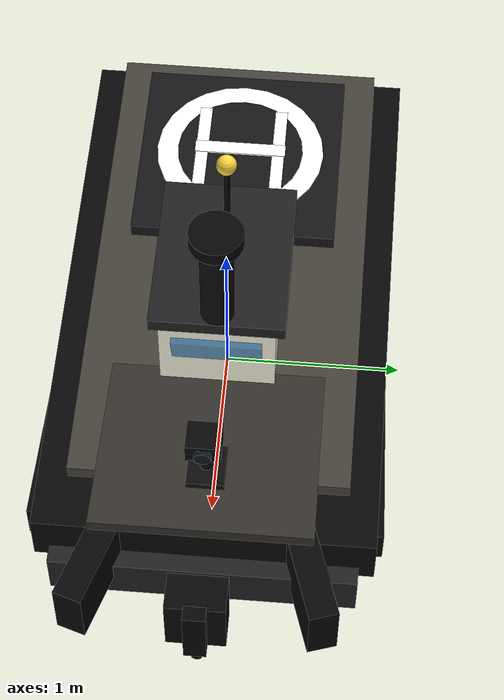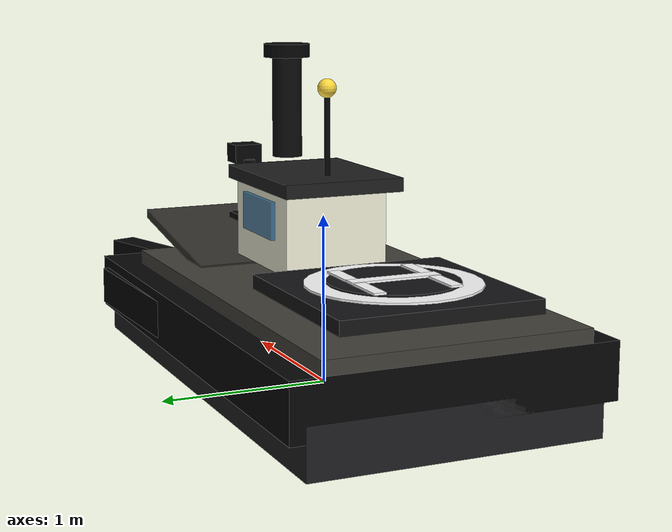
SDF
<?xml version="1.0" ?>
<sdf version="1.8">
  <model name="simple_boat">
    <pose>0 0 0.35 0 0 0</pose>

    <link name="hull">
      <inertial>
        <mass>70.0</mass>
        <inertia>
          <ixx>22.0</ixx>
          <iyy>48.0</iyy>
          <izz>58.0</izz>
          <ixy>0</ixy>
          <ixz>0</ixz>
          <iyz>0</iyz>
        </inertia>
      </inertial>

      <collision name="hull_collision">
        <pose>0 0 -0.05 0 0 0</pose>
        <geometry>
          <box>
            <size>3.4 1.9 0.5</size>
          </box>
        </geometry>
      </collision>

      <visual name="lower_hull">
        <pose>-0.05 0 -0.16 0 0 0</pose>
        <geometry>
          <box>
            <size>3.25 1.65 0.28</size>
          </box>
        </geometry>
        <material>
          <ambient>0.08 0.08 0.09 1</ambient>
          <diffuse>0.12 0.12 0.13 1</diffuse>
          <specular>0.1 0.1 0.1 1</specular>
        </material>
      </visual>

      <visual name="upper_hull">
        <pose>-0.1 0 0.05 0 0 0</pose>
        <geometry>
          <box>
            <size>3.15 1.82 0.32</size>
          </box>
        </geometry>
        <material>
          <ambient>0.015 0.015 0.018 1</ambient>
          <diffuse>0.025 0.025 0.03 1</diffuse>
          <specular>0.18 0.18 0.2 1</specular>
        </material>
      </visual>

      <visual name="bow_side_left">
        <pose>1.46 0.52 0.04 0 0 0.31</pose>
        <geometry>
          <box>
            <size>0.92 0.16 0.38</size>
          </box>
        </geometry>
        <material>
          <ambient>0.015 0.015 0.018 1</ambient>
          <diffuse>0.025 0.025 0.03 1</diffuse>
          <specular>0.18 0.18 0.2 1</specular>
        </material>
      </visual>

      <visual name="bow_side_right">
        <pose>1.46 -0.52 0.04 0 0 -0.31</pose>
        <geometry>
          <box>
            <size>0.92 0.16 0.38</size>
          </box>
        </geometry>
        <material>
          <ambient>0.015 0.015 0.018 1</ambient>
          <diffuse>0.025 0.025 0.03 1</diffuse>
          <specular>0.18 0.18 0.2 1</specular>
        </material>
      </visual>

      <visual name="bow_center_nose">
        <pose>1.82 0 0.04 0 0 0</pose>
        <geometry>
          <box>
            <size>0.2 0.32 0.4</size>
          </box>
        </geometry>
        <material>
          <ambient>0.012 0.012 0.015 1</ambient>
          <diffuse>0.022 0.022 0.026 1</diffuse>
          <specular>0.16 0.16 0.18 1</specular>
        </material>
      </visual>

      <visual name="bow_keel_line">
        <pose>1.55 0 -0.34 0 1.5708 0</pose>
        <geometry>
          <cylinder>
            <radius>0.028</radius>
            <length>0.72</length>
          </cylinder>
        </geometry>
        <material>
          <ambient>0.006 0.006 0.008 1</ambient>
          <diffuse>0.012 0.012 0.014 1</diffuse>
        </material>
      </visual>

      <visual name="foredeck_slope">
        <pose>1.05 0 0.36 0 -0.16 0</pose>
        <geometry>
          <box>
            <size>1.1 1.16 0.055</size>
          </box>
        </geometry>
        <material>
          <ambient>0.12 0.12 0.115 1</ambient>
          <diffuse>0.2 0.19 0.17 1</diffuse>
          <specular>0.08 0.08 0.08 1</specular>
        </material>
      </visual>

      <visual name="bow_stem">
        <pose>1.94 0 0.03 0 0 0</pose>
        <geometry>
          <box>
            <size>0.08 0.12 0.42</size>
          </box>
        </geometry>
        <material>
          <ambient>0.01 0.01 0.012 1</ambient>
          <diffuse>0.02 0.02 0.024 1</diffuse>
          <specular>0.16 0.16 0.18 1</specular>
        </material>
      </visual>

      <visual name="hull_side_fairing_left">
        <pose>0.05 0.86 0.04 0 0 0.035</pose>
        <geometry>
          <box>
            <size>2.65 0.08 0.22</size>
          </box>
        </geometry>
        <material>
          <ambient>0.01 0.01 0.012 1</ambient>
          <diffuse>0.018 0.018 0.022 1</diffuse>
          <specular>0.14 0.14 0.16 1</specular>
        </material>
      </visual>

      <visual name="hull_side_fairing_right">
        <pose>0.05 -0.86 0.04 0 0 -0.035</pose>
        <geometry>
          <box>
            <size>2.65 0.08 0.22</size>
          </box>
        </geometry>
        <material>
          <ambient>0.01 0.01 0.012 1</ambient>
          <diffuse>0.018 0.018 0.022 1</diffuse>
          <specular>0.14 0.14 0.16 1</specular>
        </material>
      </visual>

      <visual name="deck">
        <pose>-0.25 0 0.25 0 0 0</pose>
        <geometry>
          <box>
            <size>2.85 1.5 0.08</size>
          </box>
        </geometry>
        <material>
          <ambient>0.18 0.18 0.17 1</ambient>
          <diffuse>0.26 0.25 0.22 1</diffuse>
          <specular>0.08 0.08 0.08 1</specular>
        </material>
      </visual>

      <visual name="cabin_body">
        <pose>0.2 0 0.58 0 0 0</pose>
        <geometry>
          <box>
            <size>0.78 0.62 0.48</size>
          </box>
        </geometry>
        <material>
          <ambient>0.86 0.86 0.8 1</ambient>
          <diffuse>0.96 0.95 0.86 1</diffuse>
          <specular>0.28 0.28 0.24 1</specular>
        </material>
      </visual>

      <visual name="front_window">
        <pose>0.6 0 0.64 0 0.28 0</pose>
        <geometry>
          <box>
            <size>0.035 0.48 0.24</size>
          </box>
        </geometry>
        <material>
          <ambient>0.05 0.22 0.36 0.65</ambient>
          <diffuse>0.08 0.38 0.62 0.65</diffuse>
          <specular>0.9 0.95 1 1</specular>
        </material>
      </visual>

      <visual name="left_window">
        <pose>0.2 0.325 0.64 0 0 0</pose>
        <geometry>
          <box>
            <size>0.45 0.025 0.22</size>
          </box>
        </geometry>
        <material>
          <ambient>0.05 0.22 0.36 0.65</ambient>
          <diffuse>0.08 0.38 0.62 0.65</diffuse>
          <specular>0.9 0.95 1 1</specular>
        </material>
      </visual>

      <visual name="right_window">
        <pose>0.2 -0.325 0.64 0 0 0</pose>
        <geometry>
          <box>
            <size>0.45 0.025 0.22</size>
          </box>
        </geometry>
        <material>
          <ambient>0.05 0.22 0.36 0.65</ambient>
          <diffuse>0.08 0.38 0.62 0.65</diffuse>
          <specular>0.9 0.95 1 1</specular>
        </material>
      </visual>

      <visual name="cabin_roof">
        <pose>0.15 0 0.85 0 0 0</pose>
        <geometry>
          <box>
            <size>0.92 0.72 0.08</size>
          </box>
        </geometry>
        <material>
          <ambient>0.08 0.08 0.08 1</ambient>
          <diffuse>0.12 0.12 0.12 1</diffuse>
          <specular>0.18 0.18 0.18 1</specular>
        </material>
      </visual>

      <collision name="landing_pad_collision">
        <pose>-0.92 0 0.36 0 0 0</pose>
        <geometry>
          <box>
            <size>1.7 1.55 0.24</size>
          </box>
        </geometry>
        <surface>
          <contact>
            <ode>
              <min_depth>0.001</min_depth>
              <max_vel>0</max_vel>
            </ode>
          </contact>
          <friction>
            <ode>
              <mu>1.5</mu>
              <mu2>1.5</mu2>
            </ode>
          </friction>
        </surface>
      </collision>

      <visual name="landing_pad_visual">
        <pose>-0.92 0 0.38 0 0 0</pose>
        <geometry>
          <box>
            <size>1.15 1.15 0.08</size>
          </box>
        </geometry>
        <material>
          <ambient>0.04 0.04 0.045 1</ambient>
          <diffuse>0.08 0.08 0.09 1</diffuse>
          <specular>0.08 0.08 0.08 1</specular>
        </material>
      </visual>

      <visual name="landing_pad_ring">
        <pose>-0.92 0 0.435 0 0 0</pose>
        <geometry>
          <cylinder>
            <radius>0.48</radius>
            <length>0.012</length>
          </cylinder>
        </geometry>
        <material>
          <ambient>1 1 1 1</ambient>
          <diffuse>1 1 1 1</diffuse>
        </material>
      </visual>

      <visual name="landing_pad_center">
        <pose>-0.92 0 0.445 0 0 0</pose>
        <geometry>
          <cylinder>
            <radius>0.36</radius>
            <length>0.014</length>
          </cylinder>
        </geometry>
        <material>
          <ambient>0.04 0.04 0.045 1</ambient>
          <diffuse>0.08 0.08 0.09 1</diffuse>
        </material>
      </visual>

      <visual name="landing_h_left">
        <pose>-0.92 0.22 0.458 0 0 0</pose>
        <geometry>
          <box>
            <size>0.58 0.07 0.012</size>
          </box>
        </geometry>
        <material>
          <ambient>1 1 1 1</ambient>
          <diffuse>1 1 1 1</diffuse>
        </material>
      </visual>

      <visual name="landing_h_right">
        <pose>-0.92 -0.22 0.458 0 0 0</pose>
        <geometry>
          <box>
            <size>0.58 0.07 0.012</size>
          </box>
        </geometry>
        <material>
          <ambient>1 1 1 1</ambient>
          <diffuse>1 1 1 1</diffuse>
        </material>
      </visual>

      <visual name="landing_h_crossbar">
        <pose>-0.92 0 0.462 0 0 0</pose>
        <geometry>
          <box>
            <size>0.08 0.52 0.012</size>
          </box>
        </geometry>
        <material>
          <ambient>1 1 1 1</ambient>
          <diffuse>1 1 1 1</diffuse>
        </material>
      </visual>

      <visual name="mast">
        <pose>-0.05 0 1.1 0 0 0</pose>
        <geometry>
          <cylinder>
            <radius>0.018</radius>
            <length>0.55</length>
          </cylinder>
        </geometry>
        <material>
          <ambient>0.02 0.02 0.02 1</ambient>
          <diffuse>0.02 0.02 0.02 1</diffuse>
        </material>
      </visual>

      <visual name="nav_light">
        <pose>-0.05 0 1.39 0 0 0</pose>
        <geometry>
          <sphere>
            <radius>0.055</radius>
          </sphere>
        </geometry>
        <material>
          <ambient>1 0.85 0.25 1</ambient>
          <diffuse>1 0.85 0.25 1</diffuse>
          <specular>1 0.9 0.5 1</specular>
        </material>
      </visual>

      <visual name="lidar_mount">
        <pose>0.55 0 1.24 0 0 0</pose>
        <geometry>
          <cylinder>
            <radius>0.09</radius>
            <length>0.62</length>
          </cylinder>
        </geometry>
        <material>
          <ambient>0.02 0.02 0.022 1</ambient>
          <diffuse>0.04 0.04 0.045 1</diffuse>
          <specular>0.2 0.2 0.22 1</specular>
        </material>
      </visual>

      <visual name="lidar_body">
        <pose>0.55 0 1.57 0 0 0</pose>
        <geometry>
          <cylinder>
            <radius>0.14</radius>
            <length>0.08</length>
          </cylinder>
        </geometry>
        <material>
          <ambient>0.01 0.01 0.012 1</ambient>
          <diffuse>0.02 0.02 0.024 1</diffuse>
          <specular>0.35 0.35 0.38 1</specular>
        </material>
      </visual>

      <visual name="front_camera_mount_base">
        <pose>1.2 0 0.455 0 0 0</pose>
        <geometry>
          <box>
            <size>0.24 0.2 0.04</size>
          </box>
        </geometry>
        <material>
          <ambient>0.025 0.025 0.028 1</ambient>
          <diffuse>0.04 0.04 0.045 1</diffuse>
          <specular>0.18 0.18 0.2 1</specular>
        </material>
      </visual>

      <visual name="front_camera_mount_post">
        <pose>1.2 0 0.65 0 0 0</pose>
        <geometry>
          <cylinder>
            <radius>0.035</radius>
            <length>0.35</length>
          </cylinder>
        </geometry>
        <material>
          <ambient>0.018 0.018 0.02 1</ambient>
          <diffuse>0.03 0.03 0.034 1</diffuse>
          <specular>0.18 0.18 0.2 1</specular>
        </material>
      </visual>

      <visual name="front_camera_body">
        <pose>1.29 0 0.86 0 0 0</pose>
        <geometry>
          <box>
            <size>0.16 0.18 0.12</size>
          </box>
        </geometry>
        <material>
          <ambient>0.015 0.015 0.018 1</ambient>
          <diffuse>0.025 0.025 0.03 1</diffuse>
          <specular>0.2 0.2 0.22 1</specular>
        </material>
      </visual>

      <visual name="front_camera_lens">
        <pose>1.385 0 0.86 0 1.5708 0</pose>
        <geometry>
          <cylinder>
            <radius>0.045</radius>
            <length>0.025</length>
          </cylinder>
        </geometry>
        <material>
          <ambient>0.02 0.04 0.06 1</ambient>
          <diffuse>0.03 0.08 0.12 1</diffuse>
          <specular>0.8 0.9 1 1</specular>
        </material>
      </visual>

      <sensor name="front_camera" type="camera">
        <pose>1.405 0 0.86 0 0 0</pose>
        <topic>/boat/front_camera</topic>
        <update_rate>15</update_rate>
        <camera>
          <horizontal_fov>1.047</horizontal_fov>
          <image>
            <width>1280</width>
            <height>720</height>
            <format>R8G8B8</format>
          </image>
          <clip>
            <near>0.05</near>
            <far>200</far>
          </clip>
        </camera>
        <always_on>true</always_on>
        <visualize>true</visualize>
      </sensor>

      <sensor name="front_lidar" type="gpu_lidar">
        <gz_frame_id>landing_boat/hull/front_lidar</gz_frame_id>
        <pose>0.55 0 1.55 0 0 0</pose>
        <topic>/boat/scan</topic>
        <update_rate>10</update_rate>
        <ray>
          <scan>
            <horizontal>
              <samples>361</samples>
              <resolution>1</resolution>
              <min_angle>-1.5708</min_angle>
              <max_angle>1.5708</max_angle>
            </horizontal>
          </scan>
          <range>
            <min>0.35</min>
            <max>80</max>
            <resolution>0.02</resolution>
          </range>
          <noise>
            <type>gaussian</type>
            <mean>0</mean>
            <stddev>0.01</stddev>
          </noise>
        </ray>
        <always_on>true</always_on>
        <visualize>true</visualize>
      </sensor>
    </link>

    <plugin
      filename="gz-sim-velocity-control-system"
      name="gz::sim::systems::VelocityControl">
      <topic>/model/simple_boat/cmd_vel</topic>
      <control_linear_velocity>true</control_linear_velocity>
      <control_angular_velocity>true</control_angular_velocity>
    </plugin>

    <plugin
      filename="gz-sim-pose-publisher-system"
      name="gz::sim::systems::PosePublisher">
      <publish_model_pose>true</publish_model_pose>
      <publish_link_pose>false</publish_link_pose>
      <publish_collision_pose>false</publish_collision_pose>
      <publish_visual_pose>false</publish_visual_pose>
      <publish_nested_model_pose>false</publish_nested_model_pose>
      <publish_sensor_pose>false</publish_sensor_pose>
      <use_pose_vector_msg>false</use_pose_vector_msg>
      <topic>/boat/pose</topic>
      <update_frequency>30</update_frequency>
    </plugin>

    <plugin
      filename="libBoatWaveFollower.so"
      name="gz::sim::systems::BoatWaveFollower">
      <mean_z>0.42</mean_z>
      <heave_amplitude>0.11</heave_amplitude>
      <roll_amplitude>0.055</roll_amplitude>
      <pitch_amplitude>0.045</pitch_amplitude>
      <primary_frequency>1.1</primary_frequency>
      <secondary_frequency>1.7</secondary_frequency>
      <wave_number_x>0.35</wave_number_x>
      <wave_number_y>0.22</wave_number_y>
    </plugin>
  </model>
</sdf>
